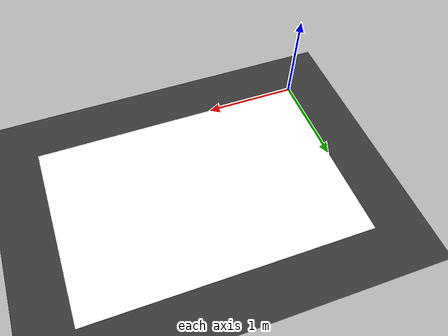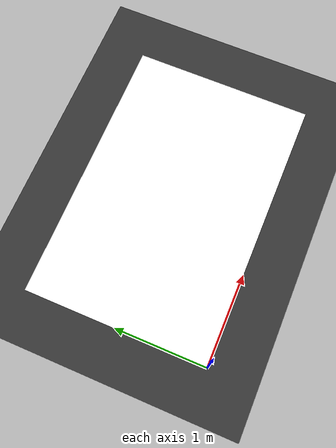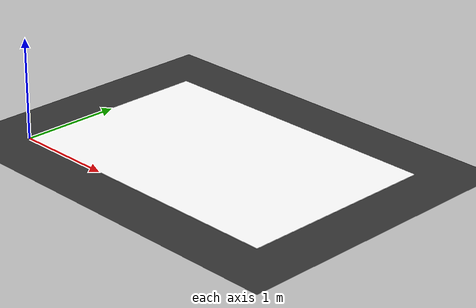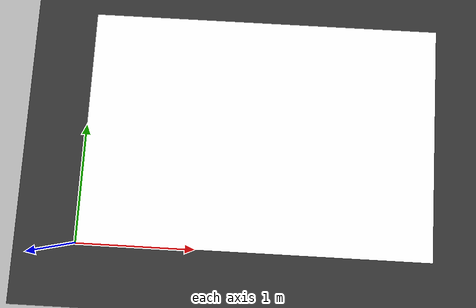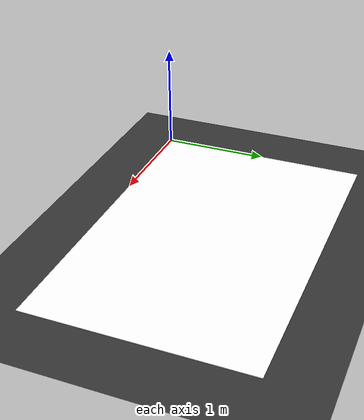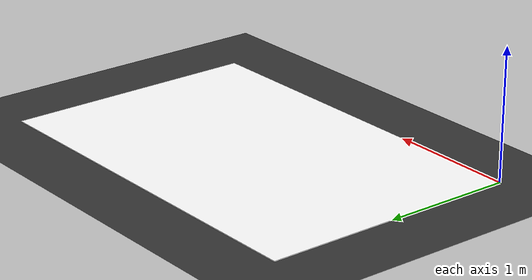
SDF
<?xml version="1.0"?>
<sdf version="1.9">
  <world name="eurobot_2026_arena">
    <!-- Set the background color -->
    <background>
      <color>0.7 0.7 0.7 1</color>
    </background>

    <!-- Add a light source -->
    <light type="directional" name="sun">
      <diffuse>1 1 1 1</diffuse>
      <specular>0.5 0.5 0.5 1</specular>
      <direction>-0.5 0.5 -1</direction>
    </light>

    <!-- Set the gravity of the world -->
    <gravity>0 0 -9.81</gravity>

    <!-- Set the physics engine -->
    <physics type="ode">
      <real_time_update_rate>1000.0</real_time_update_rate>
      <max_step_size>0.001</max_step_size>
      <real_time_factor>1</real_time_factor>
      <ode>
        <solver>
          <type>quick</type>
          <iters>150</iters>
          <precon_iters>0</precon_iters>
          <sor>1.400000</sor>
          <use_dynamic_moi_rescaling>1</use_dynamic_moi_rescaling>
        </solver>
        <constraints>
          <cfm>0.00001</cfm>
          <erp>0.2</erp>
          <contact_max_correcting_vel>2000.000000</contact_max_correcting_vel>
          <contact_surface_layer>0.01000</contact_surface_layer>
        </constraints>
      </ode>
    </physics>
    <plugin
        filename="libignition-gazebo-physics-system.so"
        name="ignition::gazebo::systems::Physics">
    </plugin>
    <plugin
        filename="libignition-gazebo-user-commands-system.so"
        name="ignition::gazebo::systems::UserCommands">
    </plugin>
    <plugin
        filename="libignition-gazebo-scene-broadcaster-system.so"
        name="ignition::gazebo::systems::SceneBroadcaster">
    </plugin>

    <model name="ground_plane">
        <static>true</static>
        <link name="link">
            <collision name="collision">
            <geometry>
                <plane>
                <normal>0 0 1</normal>
                </plane>
            </geometry>
            </collision>
            <visual name="visual">
            <geometry>
                <plane>
                <normal>0 0 1</normal>
                <size>20 20</size>
                </plane>
            </geometry>
            <material>
                <ambient>0.8 0.8 0.8 1</ambient>
                <diffuse>0.2 0.2 0.2 1</diffuse>
                <specular>0.8 0.8 0.8 1</specular>
            </material>
            </visual>
        </link>
    </model>

    <!-- Include mat model -->
    <include>
      <uri>file://models/mat</uri>
      <pose>1.5 1.0 0 0 0 3.1415</pose>
    </include>

  </world>
</sdf>

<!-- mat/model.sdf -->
<sdf version="1.9">
  <!-- Define a floor mat (3000mm x 2000mm x 70mm) -->
    <model name="floor_mat">
    <pose>0 0 0 0 0 0</pose> <!-- Shift origin to bottom-left corner -->
        <static>true</static>
        <link name="floor_link">
            <collision name="collision">
                <geometry>
                    <box>
                        <size>3 2 0.007</size>
                    </box>
                </geometry>
                <surface>
                    <friction>
                        <ode>
                            <mu>100</mu>
                            <mu2>50</mu2>
                            <slip1>0.0</slip1>
                            <slip2>0.0</slip2>
                        </ode>
                    </friction>
                </surface>
            </collision>
            <visual name="visual_mat">
                <geometry>
                    <box>
                        <size>3 2 0.007</size>
                    </box>
                </geometry>
                <material>
                    <diffuse>1 1 1 1</diffuse>
                    <pbr>
                        <metal>
                            <albedo_map>file://models/mat/mat_rotated.png</albedo_map>
                            <metalness>0.0</metalness>
                            <roughness>0.8</roughness>
                        </metal>
                    </pbr>
                </material>
            </visual>
        </link>
    </model>
</sdf>
